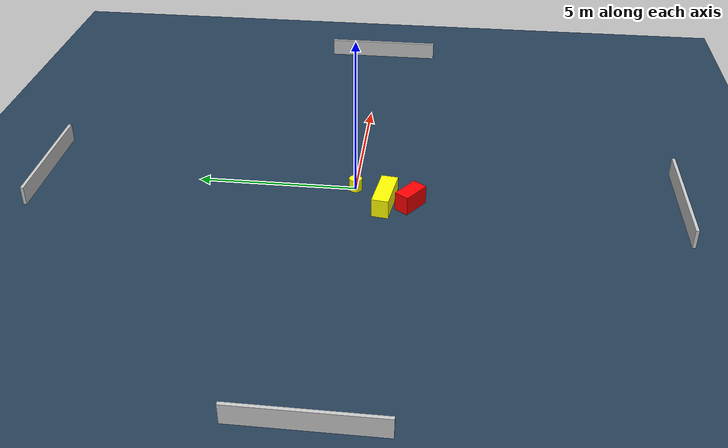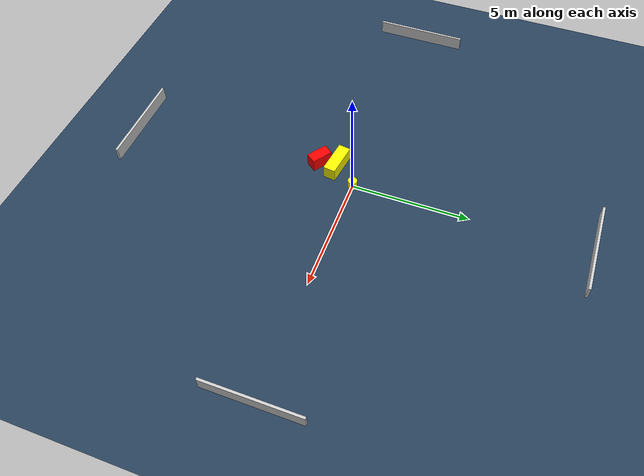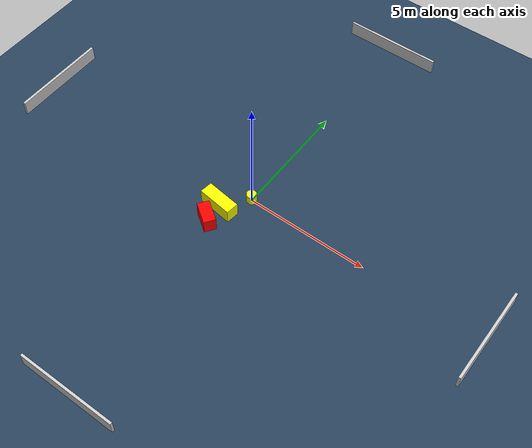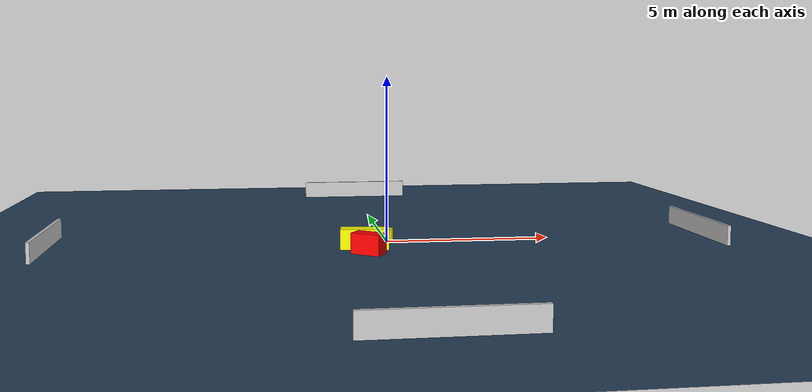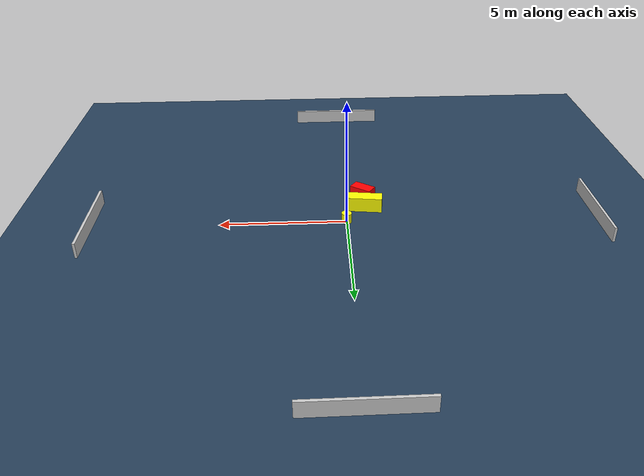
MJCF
<?xml version="1.0" ?>
<mujoco model="generated_environment">
  <option timestep="0.01" integrator="RK4" cone="elliptic"/>
  <default>
    <geom density="1"/>
  </default>
  <asset>
    <texture builtin="gradient" height="3072" name="skybox" rgb1="0.3 0.5 0.7" rgb2="0 0 0" type="skybox" width="512"/>
    <texture builtin="checker" height="300" name="groundplane" rgb1="0.2 0.3 0.4" rgb2="0.1 0.2 0.3" type="2d" width="300"/>
    <material name="groundplane" reflectance="0.2" texrepeat="5 5" texture="groundplane"/>
  </asset>
  <worldbody>
    <light dir="0 0 -1" directional="true" pos="0 0 1.5"/>
    <geom condim="3" friction="0.5 0.005 0.001" material="groundplane" name="floor" pos="0 0 0" size="0 0 0.05" type="plane"/>
    <body name="walls">
      <geom name="wall_1" condim="4" pos="-10.0 0.0 0.3" rgba="0.800000011920929 0.800000011920929 0.800000011920929 1.0" size="0.05 2.0 0.3" type="box"/>
      <geom name="wall_2" condim="4" pos="10.0 0.0 0.3" rgba="0.800000011920929 0.800000011920929 0.800000011920929 1.0" size="0.05 2.0 0.3" type="box"/>
      <geom name="wall_3" condim="4" pos="0.0 -10.0 0.3" rgba="0.800000011920929 0.800000011920929 0.800000011920929 1.0" size="2.0 0.05 0.3" type="box"/>
      <geom name="wall_4" condim="4" pos="0.0 10.0 0.3" rgba="0.800000011920929 0.800000011920929 0.800000011920929 1.0" size="2.0 0.05 0.3" type="box"/>
    </body>
    <body name="robot">
      <joint name="joint_x" type="slide" pos="0 0 0" axis="1 0 0"/>
      <joint name="joint_y" type="slide" pos="0 0 0" axis="0 1 0"/>
      <geom name="robot" type="cylinder" pos="0.0 0.0 0.2" size="0.2 0.2 0.0" mass="5.0" friction="1.0 0.005 0.0001" condim="4" rgba="1.0 1.0 0.0 1.0"/>
    </body>
    <body name="obstacle_1_movable">
      <geom name="obstacle_1_movable" condim="4" pos="-0.7787550854301526 -0.984123286623293 0.3" euler="0 0 82.21713296915473" friction="0.0 0.005 0.001" rgba="1.0 1.0 0.0 1.0" size="0.260374698544813 0.7074121530627664 0.3" type="box" mass="0.1"/>
      <joint type="free"/>
    </body>
    <body name="obstacle_2_static">
      <geom name="obstacle_2_static" condim="4" pos="-0.7576540889413789 -1.7672489710860149 0.3" euler="0 0 234.74164188436964" friction="0.0 0.005 0.001" rgba="1.0 0.0 0.0 1.0" size="0.24014579236889477 0.45635236092691034 0.3" type="box"/>
    </body>
  </worldbody>
  <actuator>
    <motor name="actuator_x" joint="joint_x" gear="1" ctrlrange="-1 1"/>
    <motor name="actuator_y" joint="joint_y" gear="1" ctrlrange="-1 1"/>
  </actuator>
</mujoco>
